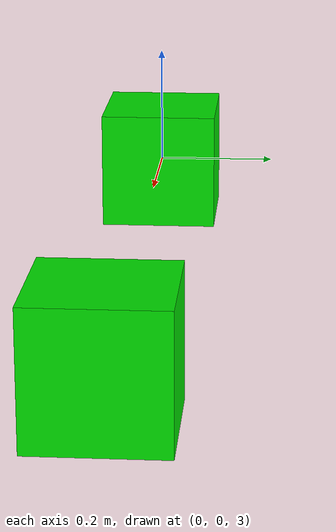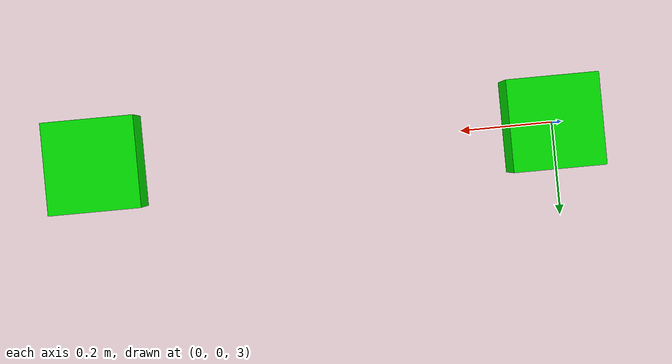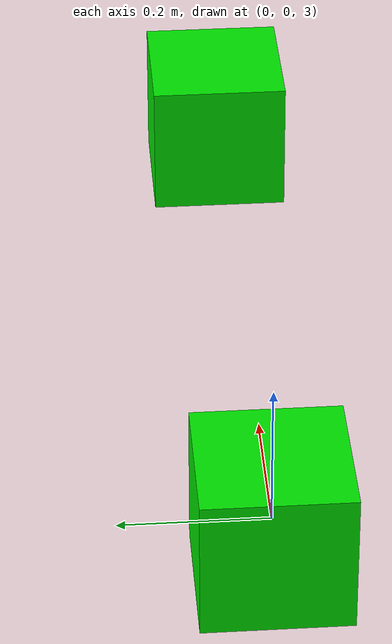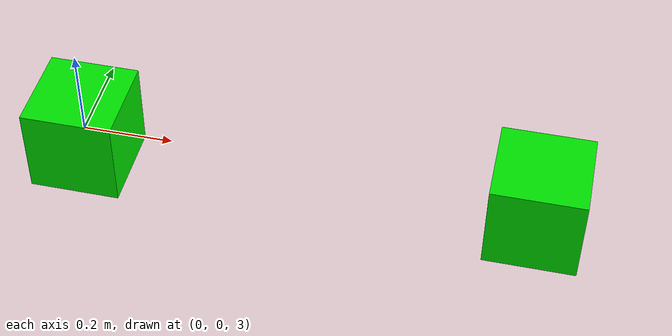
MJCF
<mujoco>

   <worldbody>
      <geom name="gplane" type="plane" size="1 1 0.1" rgba=".9 0 0 1"/>
   </worldbody>

   <worldbody>
      <body pos="0 0 3" name="bbox1">
         <joint type="free"/>
         <geom name="gbox1" type="box" size=".1 .1 .1" rgba="0 .9 0 1"/>
      </body>
   </worldbody>

   <worldbody>
      <body pos="1 0 3" name="bbox2">
         <joint type="free"/>
         <geom name="gbox2" type="box" size=".1 .1 .1" rgba="0 .9 0 1"/>
      </body>
   </worldbody>

</mujoco>
